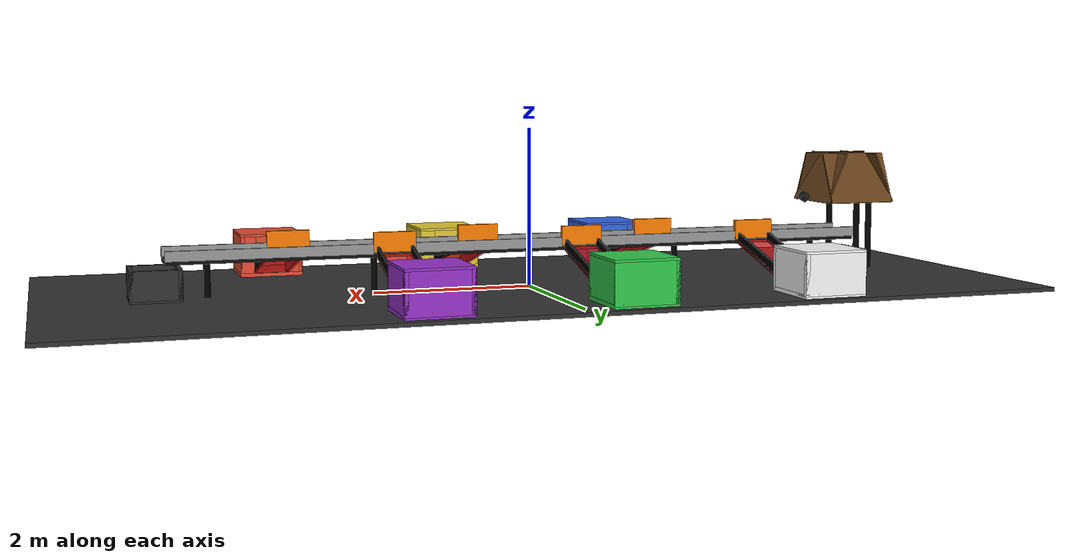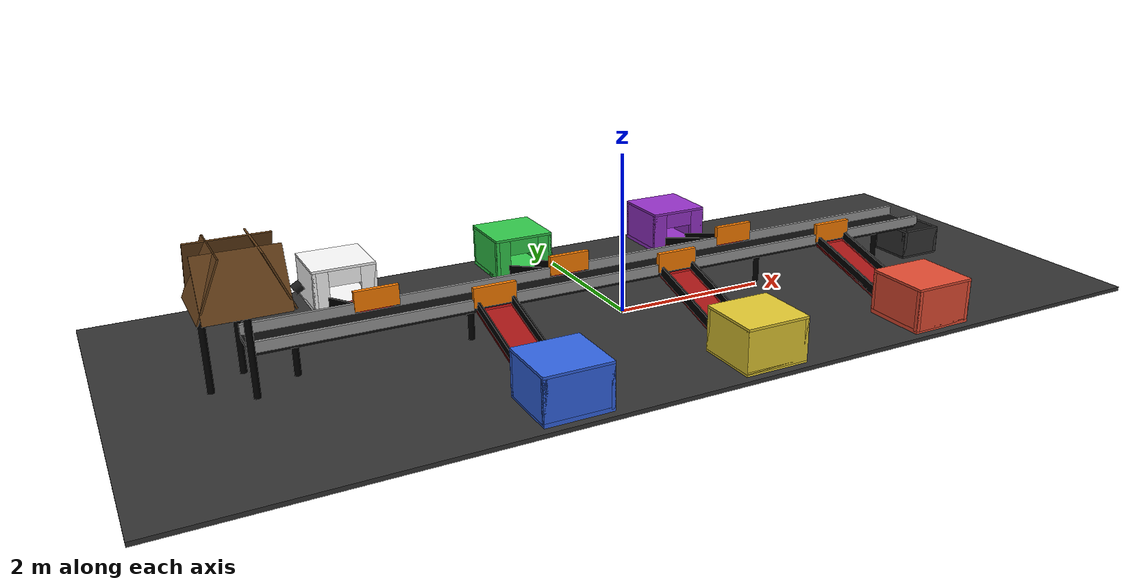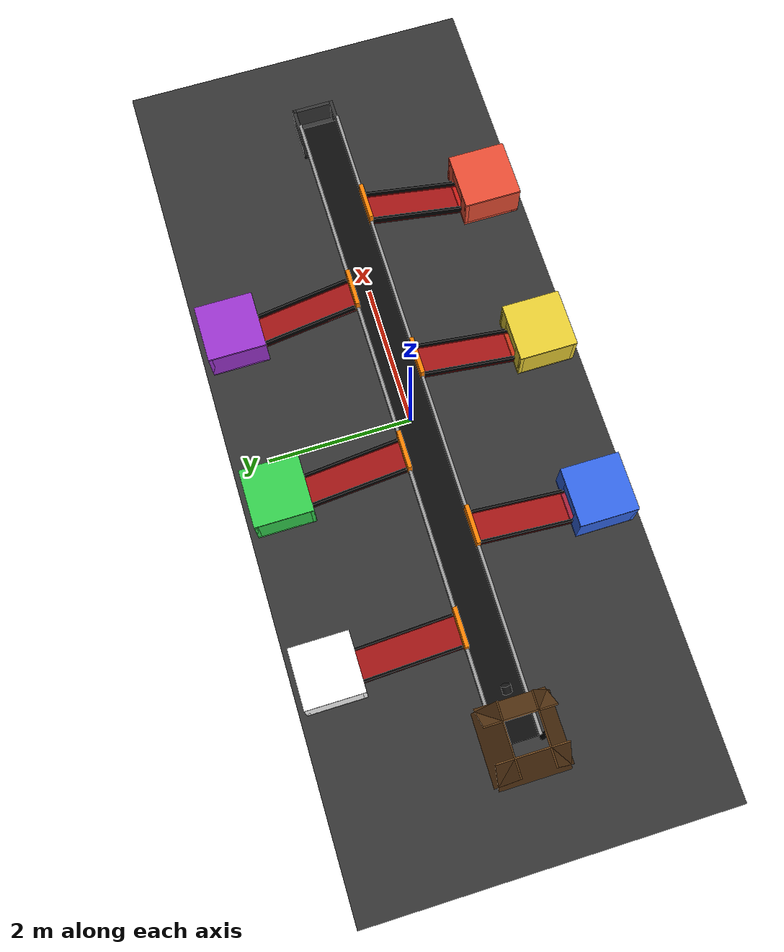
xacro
<?xml version="1.0"?>
<robot name="sorting_station" xmlns:xacro="http://www.ros.org/wiki/xacro">

  <xacro:property name="prefix" value="line_"/>
  <xacro:property name="belt_height" value="0.50"/>
  <xacro:property name="belt_length" value="9.0"/>
  <xacro:property name="belt_width" value="0.5"/>
  <xacro:property name="support_radius" value="0.04"/>    <!-- Görsel kolon yarıçapı -->
  <xacro:property name="belt_support_height" value="0.50"/>   <!-- Bant altı kolon yüksekliği -->
  <xacro:property name="hopper_support_height" value="1.00"/> <!-- Huni kolon yüksekliği (daha uzun) -->
  <xacro:property name="support_color" value="0 0 0 1.0"/>    <!-- Kolon rengi (siyah) -->

  <!-- ============================================
       ÖLÇÜ KURALLARI (KESİN)
       ============================================ -->
  <!-- KAPI BOYUTLARI (tüm kapılar aynı) - DARALTILMIŞ -->
  <xacro:property name="gate_thickness" value="0.055"/>     <!-- Kapı kalınlığı (x ekseni) - minik kısaltıldı -->
  <xacro:property name="gate_arm_length" value="0.52"/>     <!-- Kol uzunluğu (banda doğru) - çok az kısaltıldı -->
  <xacro:property name="gate_height" value="0.24"/>         <!-- Kapı yüksekliği -->
  <xacro:property name="gate_hinge_offset" value="${gate_arm_length/2 - 0.01}"/> <!-- Hinge-to-tip mesafe (1cm pay) -->
  <xacro:property name="gate_joint_back_shift" value="${gate_arm_length/2 - 0.005}"/> <!-- Menteşe: gap arka kenarına ~5mm mesafe -->

  <!-- DUVAR BOŞLUKLARI (tüm istasyonlarda aynı) - KAPI UZUNLUĞU KADAR -->
  <xacro:property name="wall_gap_width" value="${gate_arm_length}"/>     <!-- Kapı süpürme uzunluğu kadar boşluk -->
  <xacro:property name="wall_gap_half" value="${wall_gap_width/2.0}"/>   <!-- Boşluğun yarısı -->

  <!-- MENTEŞİ NOKTALARI (banda yakın, duvar kenarı) -->
  <xacro:property name="gate_pivot_y_left" value="0.27"/>   <!-- LEFT kapı menteşesi -->
  <xacro:property name="gate_pivot_y_right" value="-0.27"/> <!-- RIGHT kapı menteşesi -->

  <!-- BASE PLATFORM -->
  <link name="${prefix}base_link">
    <visual>
      <origin xyz="0 0 0.025"/>
      <geometry><box size="12.0 5.0 0.05"/></geometry>
      <material name="BaseGrey"><color rgba="0.2 0.2 0.2 1"/></material>
    </visual>
    <collision>
      <origin xyz="0 0 0.025"/>
      <geometry><box size="12.0 5.0 0.05"/></geometry>
    </collision>
    <inertial>
      <mass value="100"/>
      <origin xyz="0 0 0.025"/>
      <inertia ixx="30" ixy="0" ixz="0" iyy="40" iyz="0" izz="50"/>
    </inertial>
  </link>

  <!-- MAIN CONVEYOR BELT -->
  <link name="${prefix}conveyor_belt">
    <visual>
      <origin xyz="0 0 0"/>
      <geometry><box size="${belt_length} ${belt_width} 0.05"/></geometry>
      <material name="BeltBlack"><color rgba="0.05 0.05 0.05 1"/></material>
    </visual>
    <collision>
      <origin xyz="0 0 0"/>
      <geometry><box size="${belt_length} ${belt_width} 0.05"/></geometry>
      <surface>
        <friction>
          <ode><mu>1.5</mu><mu2>1.5</mu2></ode>
        </friction>
      </surface>
    </collision>
    <inertial>
      <mass value="25"/>
      <origin xyz="0 0 0"/>
      <inertia ixx="5" ixy="0" ixz="0" iyy="8" iyz="0" izz="6"/>
    </inertial>
  </link>

  <joint name="${prefix}conveyor_belt_joint" type="fixed">
    <parent link="${prefix}base_link"/>
    <child link="${prefix}conveyor_belt"/>
    <origin xyz="0 0 ${belt_height}"/>
  </joint>

  <gazebo reference="${prefix}conveyor_belt">
    <material>Gazebo/Grey</material>
    <mu1>1.5</mu1>
    <mu2>1.5</mu2>
  </gazebo>

  <!-- VISUAL SUPPORT COLUMNS (sadece görsel, hafif) -->
  <xacro:macro name="support_column" params="idx x y height">
    <link name="${prefix}support_${idx}">
      <visual>
        <origin xyz="0 0 ${height/2}"/>
        <geometry><cylinder length="${height}" radius="${support_radius}"/></geometry>
        <material name="SupportMat"><color rgba="${support_color}"/></material>
      </visual>
      <gazebo reference="${prefix}support_${idx}">
        <material>Gazebo/Black</material>
      </gazebo>
      <collision>
        <origin xyz="0 0 ${height/2}"/>
        <geometry><cylinder length="${height}" radius="0.001"/></geometry>
      </collision>
      <inertial>
        <mass value="0.1"/>
        <origin xyz="0 0 ${height/2}"/>
        <inertia ixx="0.001" ixy="0" ixz="0" iyy="0.001" iyz="0" izz="0.001"/>
      </inertial>
    </link>
    <joint name="${prefix}support_${idx}_joint" type="fixed">
      <parent link="${prefix}base_link"/>
      <child link="${prefix}support_${idx}"/>
      <origin xyz="${x} ${y} 0"/>
    </joint>
  </xacro:macro>

  <!-- Bant altı kolonlar -->
  <xacro:support_column idx="belt1" x="-4.0" y="0.0" height="${belt_support_height}"/>
  <xacro:support_column idx="belt2" x="-2.0" y="0.0" height="${belt_support_height}"/>
  <xacro:support_column idx="belt3" x="0.0"  y="0.0" height="${belt_support_height}"/>
  <xacro:support_column idx="belt4" x="2.0"  y="0.0" height="${belt_support_height}"/>
  <xacro:support_column idx="belt5" x="4.0"  y="0.0" height="${belt_support_height}"/>

  <!-- Huni/keçi ayağı kolonları -->
  <xacro:support_column idx="hopper_left"  x="-4.5" y="0.35"  height="${hopper_support_height}"/>
  <xacro:support_column idx="hopper_right" x="-4.5" y="-0.35" height="${hopper_support_height}"/>
  <xacro:support_column idx="hopper_back"  x="-4.9" y="0.0"   height="${hopper_support_height}"/>

  <xacro:macro name="wall_segment" params="side idx x_pos length">
    <link name="${prefix}belt_wall_${side}_seg${idx}">
      <visual>
        <origin xyz="0 0 0.08"/>
        <geometry><box size="${length} 0.04 0.12"/></geometry>
        <material name="WallGrey"><color rgba="0.6 0.6 0.6 1"/></material>
      </visual>
      <collision>
        <origin xyz="0 0 0.08"/>
        <geometry><box size="${length} 0.04 0.12"/></geometry>
      </collision>
      <inertial>
        <mass value="0.5"/>
        <inertia ixx="0.02" ixy="0" ixz="0" iyy="0.03" iyz="0" izz="0.03"/>
      </inertial>
    </link>

    <joint name="${prefix}belt_wall_${side}_seg${idx}_joint" type="fixed">
      <parent link="${prefix}conveyor_belt"/>
      <child link="${prefix}belt_wall_${side}_seg${idx}"/>
      <xacro:if value="${side == 'left'}">
        <origin xyz="${x_pos} ${belt_width/2 + 0.02} 0"/>
      </xacro:if>
      <xacro:if value="${side == 'right'}">
        <origin xyz="${x_pos} ${-belt_width/2 - 0.02} 0"/>
      </xacro:if>
    </joint>
  </xacro:macro>

  <!-- LEFT WALL SEGMENTS (boşluklar x=-3.0, -0.6, 1.8) -->
  <!-- Her boşluk gate_arm_length (0.52m) genişlikte -->
  <xacro:wall_segment side="left" idx="1" x_pos="-3.88" length="1.24"/>    <!-- -4.5 to -3.26 -->
  <!-- GAP: -3.26 to -2.74 (0.52m) for gate1 at x=-3.0 -->
  <xacro:wall_segment side="left" idx="2" x_pos="-1.8" length="1.88"/>     <!-- -2.74 to -0.86 -->
  <!-- GAP: -0.86 to -0.34 (0.52m) for gate3 at x=-0.6 -->
  <xacro:wall_segment side="left" idx="3" x_pos="0.6" length="1.88"/>      <!-- -0.34 to 1.54 -->
  <!-- GAP: 1.54 to 2.06 (0.52m) for gate5 at x=1.8 -->
  <xacro:wall_segment side="left" idx="4" x_pos="3.28" length="2.44"/>     <!-- 2.06 to 4.5 -->

  <!-- RIGHT WALL SEGMENTS (boşluklar x=-1.8, 0.6, 3.0) -->
  <xacro:wall_segment side="right" idx="1" x_pos="-3.28" length="2.44"/>   <!-- -4.5 to -2.06 -->
  <!-- GAP: -2.06 to -1.54 (0.52m) for gate2 at x=-1.8 -->
  <xacro:wall_segment side="right" idx="2" x_pos="-0.6" length="1.88"/>    <!-- -1.54 to 0.34 -->
  <!-- GAP: 0.34 to 0.86 (0.52m) for gate4 at x=0.6 -->
  <xacro:wall_segment side="right" idx="3" x_pos="1.8" length="1.88"/>     <!-- 0.86 to 2.74 -->
  <!-- GAP: 2.74 to 3.26 (0.52m) for gate6 at x=3.0 -->
  <xacro:wall_segment side="right" idx="4" x_pos="3.88" length="1.24"/>    <!-- 3.26 to 4.5 -->

  <!-- HOPPER/FUNNEL -->
  <link name="${prefix}hopper_base">
    <inertial><mass value="0.1"/><inertia ixx="0.01" ixy="0" ixz="0" iyy="0.01" iyz="0" izz="0.01"/></inertial>
  </link>

  <joint name="${prefix}hopper_base_joint" type="fixed">
    <parent link="${prefix}conveyor_belt"/>
    <child link="${prefix}hopper_base"/>
    <origin xyz="-4.5 0 0.6"/>
  </joint>

  <link name="${prefix}hopper_wall_front">
    <visual>
      <geometry><box size="0.9 0.02 0.7"/></geometry>
      <material name="HopperWall"><color rgba="0.4 0.25 0.1 1.0"/></material>
    </visual>
    <gazebo reference="${prefix}hopper_wall_front">
      <material>Gazebo/Brown</material>
    </gazebo>
    <collision><geometry><box size="0.9 0.02 0.7"/></geometry></collision>
    <inertial><mass value="1"/><inertia ixx="0.1" ixy="0" ixz="0" iyy="0.1" iyz="0" izz="0.1"/></inertial>
  </link>
  <joint name="${prefix}hopper_wall_front_joint" type="fixed">
    <parent link="${prefix}hopper_base"/>
    <child link="${prefix}hopper_wall_front"/>
    <origin xyz="0 0.35 0.2" rpy="0.4 0 0"/>
  </joint>

  <link name="${prefix}hopper_wall_back">
    <visual>
      <geometry><box size="0.9 0.02 0.7"/></geometry>
      <material name="HopperWall"><color rgba="0.4 0.25 0.1 1.0"/></material>
    </visual>
    <gazebo reference="${prefix}hopper_wall_back">
      <material>Gazebo/Brown</material>
    </gazebo>
    <collision><geometry><box size="0.9 0.02 0.7"/></geometry></collision>
    <inertial><mass value="1"/><inertia ixx="0.1" ixy="0" ixz="0" iyy="0.1" iyz="0" izz="0.1"/></inertial>
  </link>
  <joint name="${prefix}hopper_wall_back_joint" type="fixed">
    <parent link="${prefix}hopper_base"/>
    <child link="${prefix}hopper_wall_back"/>
    <origin xyz="0 -0.35 0.2" rpy="-0.4 0 0"/>
  </joint>

  <link name="${prefix}hopper_wall_left">
    <visual>
      <geometry><box size="0.02 0.9 0.7"/></geometry>
      <material name="HopperWall"><color rgba="0.4 0.25 0.1 1.0"/></material>
    </visual>
    <gazebo reference="${prefix}hopper_wall_left">
      <material>Gazebo/Brown</material>
    </gazebo>
    <collision><geometry><box size="0.02 0.9 0.7"/></geometry></collision>
    <inertial><mass value="1"/><inertia ixx="0.1" ixy="0" ixz="0" iyy="0.1" iyz="0" izz="0.1"/></inertial>
  </link>
  <joint name="${prefix}hopper_wall_left_joint" type="fixed">
    <parent link="${prefix}hopper_base"/>
    <child link="${prefix}hopper_wall_left"/>
    <origin xyz="0.35 0 0.2" rpy="0 -0.4 0"/>
  </joint>

  <link name="${prefix}hopper_wall_right">
    <visual>
      <geometry><box size="0.02 0.9 0.7"/></geometry>
      <material name="HopperWall"><color rgba="0.4 0.25 0.1 1.0"/></material>
    </visual>
    <gazebo reference="${prefix}hopper_wall_right">
      <material>Gazebo/Brown</material>
    </gazebo>
    <collision><geometry><box size="0.02 0.9 0.7"/></geometry></collision>
    <inertial><mass value="1"/><inertia ixx="0.1" ixy="0" ixz="0" iyy="0.1" iyz="0" izz="0.1"/></inertial>
  </link>
  <joint name="${prefix}hopper_wall_right_joint" type="fixed">
    <parent link="${prefix}hopper_base"/>
    <child link="${prefix}hopper_wall_right"/>
    <origin xyz="-0.35 0 0.2" rpy="0 0.4 0"/>
  </joint>

  <xacro:macro name="sweeper_gate" params="idx x side color_r color_g color_b">

    <!-- Kapı kolu (gate arm) -->
    <link name="${prefix}gate${idx}_link">
      <xacro:if value="${side > 0}">
        <!-- LEFT GATE: Menteşe y=+0.27, kol banda doğru (y=-direction) -->
        <visual>
          <!-- Kapı kolu X yönünde, menteşe boşluğun ileri ucunda (huniden uzak), serbest uç banda süpürür -->
          <origin xyz="${-(gate_arm_length/2 - 0.005)} 0 0" rpy="0 0 1.5708"/>
          <geometry><box size="${gate_thickness} ${gate_arm_length} ${gate_height}"/></geometry>
          <material name="Gate${idx}Color">
            <color rgba="${color_r} ${color_g} ${color_b} 1"/>
          </material>
        </visual>
        <collision>
          <origin xyz="${-(gate_arm_length/2 - 0.005)} 0 0" rpy="0 0 1.5708"/>
          <geometry><box size="${gate_thickness} ${gate_arm_length} ${gate_height}"/></geometry>
          <surface>
            <friction><ode><mu>3.0</mu><mu2>3.0</mu2></ode></friction>
          </surface>
        </collision>
        <inertial>
          <mass value="1.8"/>
          <origin xyz="${-(gate_arm_length/2 - 0.005)} 0 0" rpy="0 0 1.5708"/>
          <inertia ixx="0.05" ixy="0" ixz="0" iyy="0.006" iyz="0" izz="0.05"/>
        </inertial>
      </xacro:if>

      <xacro:if value="${side &lt; 0}">
        <!-- RIGHT GATE: Menteşe y=-0.27, kol banda doğru (y=+direction) -->
        <visual>
          <!-- Kapı kolu X yönünde, menteşe boşluğun ileri ucunda (huniden uzak), serbest uç banda süpürür -->
          <origin xyz="${-(gate_arm_length/2 - 0.005)} 0 0" rpy="0 0 1.5708"/>
          <geometry><box size="${gate_thickness} ${gate_arm_length} ${gate_height}"/></geometry>
          <material name="Gate${idx}Color">
            <color rgba="${color_r} ${color_g} ${color_b} 1"/>
          </material>
        </visual>
        <collision>
          <origin xyz="${-(gate_arm_length/2 - 0.005)} 0 0" rpy="0 0 1.5708"/>
          <geometry><box size="${gate_thickness} ${gate_arm_length} ${gate_height}"/></geometry>
          <surface>
            <friction><ode><mu>3.0</mu><mu2>3.0</mu2></ode></friction>
          </surface>
        </collision>
        <inertial>
          <mass value="1.8"/>
          <origin xyz="${-(gate_arm_length/2 - 0.005)} 0 0" rpy="0 0 1.5708"/>
          <inertia ixx="0.05" ixy="0" ixz="0" iyy="0.006" iyz="0" izz="0.05"/>
        </inertial>
      </xacro:if>
    </link>

    <!-- REVOLUTE JOINT: Menteşe banda yakın duvarda -->
    <joint name="gate${idx}_joint" type="revolute">
      <parent link="${prefix}conveyor_belt"/>
      <child link="${prefix}gate${idx}_link"/>
      <axis xyz="0 0 1"/>  <!-- Dikey eksen etrafında dönme -->
      <dynamics damping="0.6" friction="0.12"/>

      <xacro:if value="${side > 0}">
        <!-- LEFT GATE: Menteşe y=+0.27m (duvar kenarı) -->
        <origin xyz="${x + gate_joint_back_shift} ${gate_pivot_y_left} 0.16" rpy="0 0 0"/>
        <!-- Kapalı: 0.0, Açık: +1.3 rad (~75°, banda doğru süpürme sağa) -->
        <limit lower="-0.02" upper="1.35" effort="180" velocity="5.5"/>
      </xacro:if>

      <xacro:if value="${side &lt; 0}">
        <!-- RIGHT GATE: Menteşe y=-0.27m (duvar kenarı) -->
        <origin xyz="${x + gate_joint_back_shift} ${gate_pivot_y_right} 0.16" rpy="0 0 0"/>
        <!-- Kapalı: 0.0, Açık: -1.3 rad (~75°, banda doğru süpürme sola) -->
        <limit lower="-1.35" upper="0.02" effort="180" velocity="5.5"/>
      </xacro:if>
    </joint>

    <gazebo reference="${prefix}gate${idx}_link">
      <material>Gazebo/Orange</material>
      <mu1>3.0</mu1>
      <mu2>3.0</mu2>
    </gazebo>
  </xacro:macro>

  <!-- 6 Kapı tanımları (TÜM KAPILAR AYNI BOYUTTA) -->
  <xacro:sweeper_gate idx="1" x="-3.0" side="1"  color_r="1.0" color_g="0.5" color_b="0.0"/>
  <xacro:sweeper_gate idx="3" x="-0.6" side="1"  color_r="1.0" color_g="0.5" color_b="0.0"/>
  <xacro:sweeper_gate idx="5" x="1.8"  side="1"  color_r="1.0" color_g="0.5" color_b="0.0"/>

  <!-- Sağ kapılar için sağa doğru pozitif açı yerine negatif açıyla içeri süpürme (limitler üstte aynı) -->
  <xacro:sweeper_gate idx="2" x="-1.8" side="-1" color_r="1.0" color_g="0.5" color_b="0.0"/>
  <xacro:sweeper_gate idx="4" x="0.6"  side="-1" color_r="1.0" color_g="0.5" color_b="0.0"/>
  <xacro:sweeper_gate idx="6" x="3.0"  side="-1" color_r="1.0" color_g="0.5" color_b="0.0"/>

  <!-- SIDE CHANNELS -->
  <xacro:macro name="slide_channel" params="idx x y yaw">
    <link name="${prefix}channel${idx}_link">
      <visual>
        <geometry><box size="1.5 0.45 0.04"/></geometry>
        <material name="ChannelRed">
          <color rgba="0.8 0.1 0.1 0.8"/>
        </material>
      </visual>
      <collision>
        <geometry><box size="1.5 0.45 0.04"/></geometry>
        <surface>
          <friction>
            <ode><mu>0.15</mu><mu2>0.15</mu2></ode>
          </friction>
        </surface>
      </collision>
      <inertial>
        <mass value="4"/>
        <inertia ixx="0.4" ixy="0" ixz="0" iyy="0.5" iyz="0" izz="0.5"/>
      </inertial>
    </link>

    <!-- Yan set: kutuların kanaldan düşmesini engelleyen alçak duvarlar -->
    <link name="${prefix}channel${idx}_side_left">
      <visual>
        <geometry><box size="1.5 0.03 0.12"/></geometry>
        <material name="ChannelSide"><color rgba="0 0 0 1"/></material>
      </visual>
      <collision>
        <geometry><box size="1.5 0.03 0.12"/></geometry>
      </collision>
      <inertial><mass value="0.5"/><inertia ixx="0.02" ixy="0" ixz="0" iyy="0.03" iyz="0" izz="0.03"/></inertial>
    </link>

    <link name="${prefix}channel${idx}_side_right">
      <visual>
        <geometry><box size="1.5 0.03 0.12"/></geometry>
        <material name="ChannelSide"><color rgba="0 0 0 1"/></material>
      </visual>
      <collision>
        <geometry><box size="1.5 0.03 0.12"/></geometry>
      </collision>
      <inertial><mass value="0.5"/><inertia ixx="0.02" ixy="0" ixz="0" iyy="0.03" iyz="0" izz="0.03"/></inertial>
    </link>

    <joint name="${prefix}channel${idx}_joint" type="fixed">
      <parent link="${prefix}conveyor_belt"/>
      <child link="${prefix}channel${idx}_link"/>
      <origin xyz="${x} ${y} -0.21" rpy="0 0.28 ${yaw}"/>
    </joint>

    <!-- Yan setleri bağla: ana kanalın kenarına, hafif yükseltilmiş -->
    <joint name="${prefix}channel${idx}_side_left_joint" type="fixed">
      <parent link="${prefix}channel${idx}_link"/>
      <child link="${prefix}channel${idx}_side_left"/>
      <origin xyz="0 0.21 0.06" rpy="0 0 0"/>
    </joint>

    <joint name="${prefix}channel${idx}_side_right_joint" type="fixed">
      <parent link="${prefix}channel${idx}_link"/>
      <child link="${prefix}channel${idx}_side_right"/>
      <origin xyz="0 -0.21 0.06" rpy="0 0 0"/>
    </joint>

    <gazebo reference="${prefix}channel${idx}_link">
      <material>Gazebo/Red</material>
      <mu1>0.15</mu1>
      <mu2>0.15</mu2>
    </gazebo>
  </xacro:macro>

  <xacro:slide_channel idx="1" x="-3.0" y="1.0"  yaw="1.5708"/>
  <xacro:slide_channel idx="2" x="-1.8" y="-1.0" yaw="-1.5708"/>
  <xacro:slide_channel idx="3" x="-0.6" y="1.0"  yaw="1.5708"/>
  <xacro:slide_channel idx="4" x="0.6"  y="-1.0" yaw="-1.5708"/>
  <xacro:slide_channel idx="5" x="1.8"  y="1.0"  yaw="1.5708"/>
  <xacro:slide_channel idx="6" x="3.0"  y="-1.0" yaw="-1.5708"/>

  <!-- CONTAINERS -->
  <xacro:macro name="container" params="idx x y r g b name entry_side gazebo_mat">
    <link name="${prefix}container${idx}_bottom">
      <visual>
        <geometry><box size="0.8 0.8 0.05"/></geometry>
        <material name="Container${idx}Mat"><color rgba="${r} ${g} ${b} 1.0"/></material>
      </visual>
      <collision><geometry><box size="0.8 0.8 0.05"/></geometry></collision>
      <inertial><mass value="5"/><inertia ixx="0.1" ixy="0" ixz="0" iyy="0.1" iyz="0" izz="0.15"/></inertial>
    </link>
    <gazebo reference="${prefix}container${idx}_bottom">
      <material>${gazebo_mat}</material>
    </gazebo>
    <joint name="${prefix}container${idx}_bottom_joint" type="fixed">
      <parent link="${prefix}base_link"/>
      <child link="${prefix}container${idx}_bottom"/>
      <origin xyz="${x} ${y} 0.075"/>
    </joint>

    <xacro:macro name="container_wall" params="wall_name pose_x pose_y size_x size_y">
      <link name="${prefix}container${idx}_${wall_name}">
        <visual>
          <geometry><box size="${size_x} ${size_y} 0.5"/></geometry>
          <material name="Container${idx}Mat"><color rgba="${r} ${g} ${b} 1.0"/></material>
        </visual>
        <collision><geometry><box size="${size_x} ${size_y} 0.5"/></geometry></collision>
        <inertial><mass value="2"/><inertia ixx="0.06" ixy="0" ixz="0" iyy="0.06" iyz="0" izz="0.08"/></inertial>
      </link>
      <gazebo reference="${prefix}container${idx}_${wall_name}">
        <material>${gazebo_mat}</material>
      </gazebo>
      <joint name="${prefix}container${idx}_${wall_name}_joint" type="fixed">
        <parent link="${prefix}container${idx}_bottom"/>
        <child link="${prefix}container${idx}_${wall_name}"/>
        <origin xyz="${pose_x} ${pose_y} 0.25"/>
      </joint>
    </xacro:macro>

    <!-- Duvara giriş deliği için özel duvar -->
    <xacro:macro name="container_wall_with_hole" params="wall_name pose_x pose_y size_x size_y hole_w hole_h">
      <!-- Yan sütunlar -->
      <link name="${prefix}container${idx}_${wall_name}_pillar_left">
        <visual>
          <geometry><box size="${(size_x-hole_w)/2} ${size_y} 0.5"/></geometry>
          <material name="Container${idx}Mat"><color rgba="${r} ${g} ${b} 1.0"/></material>
        </visual>
        <collision><geometry><box size="${(size_x-hole_w)/2} ${size_y} 0.5"/></geometry></collision>
        <inertial><mass value="0.8"/><inertia ixx="0.04" ixy="0" ixz="0" iyy="0.04" iyz="0" izz="0.05"/></inertial>
      </link>
      <gazebo reference="${prefix}container${idx}_${wall_name}_pillar_left">
        <material>${gazebo_mat}</material>
      </gazebo>
      <joint name="${prefix}container${idx}_${wall_name}_pillar_left_joint" type="fixed">
        <parent link="${prefix}container${idx}_bottom"/>
        <child link="${prefix}container${idx}_${wall_name}_pillar_left"/>
        <origin xyz="${-hole_w/2 - (size_x-hole_w)/4} ${pose_y} 0.25"/>
      </joint>

      <link name="${prefix}container${idx}_${wall_name}_pillar_right">
        <visual>
          <geometry><box size="${(size_x-hole_w)/2} ${size_y} 0.5"/></geometry>
          <material name="Container${idx}Mat"><color rgba="${r} ${g} ${b} 1.0"/></material>
        </visual>
        <collision><geometry><box size="${(size_x-hole_w)/2} ${size_y} 0.5"/></geometry></collision>
        <inertial><mass value="0.8"/><inertia ixx="0.04" ixy="0" ixz="0" iyy="0.04" iyz="0" izz="0.05"/></inertial>
      </link>
      <gazebo reference="${prefix}container${idx}_${wall_name}_pillar_right">
        <material>${gazebo_mat}</material>
      </gazebo>
      <joint name="${prefix}container${idx}_${wall_name}_pillar_right_joint" type="fixed">
        <parent link="${prefix}container${idx}_bottom"/>
        <child link="${prefix}container${idx}_${wall_name}_pillar_right"/>
        <origin xyz="${hole_w/2 + (size_x-hole_w)/4} ${pose_y} 0.25"/>
      </joint>

      <!-- Üst lento: deliğin üstünü kapatır -->
      <link name="${prefix}container${idx}_${wall_name}_lintel">
        <visual>
          <geometry><box size="${hole_w} ${size_y} ${0.5 - hole_h}"/></geometry>
          <material name="Container${idx}Mat"><color rgba="${r} ${g} ${b} 1.0"/></material>
        </visual>
        <collision><geometry><box size="${hole_w} ${size_y} ${0.5 - hole_h}"/></geometry></collision>
        <inertial><mass value="0.8"/><inertia ixx="0.04" ixy="0" ixz="0" iyy="0.04" iyz="0" izz="0.05"/></inertial>
      </link>
      <gazebo reference="${prefix}container${idx}_${wall_name}_lintel">
        <material>${gazebo_mat}</material>
      </gazebo>
      <joint name="${prefix}container${idx}_${wall_name}_lintel_joint" type="fixed">
        <parent link="${prefix}container${idx}_bottom"/>
        <child link="${prefix}container${idx}_${wall_name}_lintel"/>
        <origin xyz="0 ${pose_y} ${(0.5 + hole_h)/2}"/>
      </joint>
    </xacro:macro>

    <!-- Standart yan duvarlar + giriş duvarı -->
    <xacro:if value="${entry_side == 'back'}">
      <xacro:container_wall wall_name="front" pose_x="0" pose_y="0.375" size_x="0.8" size_y="0.05"/>
      <xacro:container_wall_with_hole wall_name="back" pose_x="0" pose_y="-0.375" size_x="0.8" size_y="0.05" hole_w="0.4" hole_h="0.3"/>
    </xacro:if>
    <xacro:if value="${entry_side == 'front'}">
      <xacro:container_wall_with_hole wall_name="front" pose_x="0" pose_y="0.375" size_x="0.8" size_y="0.05" hole_w="0.4" hole_h="0.3"/>
      <xacro:container_wall wall_name="back" pose_x="0" pose_y="-0.375" size_x="0.8" size_y="0.05"/>
    </xacro:if>
    <xacro:container_wall wall_name="left" pose_x="0.375" pose_y="0" size_x="0.05" size_y="0.8"/>
    <xacro:container_wall wall_name="right" pose_x="-0.375" pose_y="0" size_x="0.05" size_y="0.8"/>

    <!-- Kapak (üstü kapalı) -->
    <link name="${prefix}container${idx}_top">
      <visual>
        <geometry><box size="0.8 0.8 0.03"/></geometry>
        <material name="Container${idx}Mat"><color rgba="${r} ${g} ${b} 1.0"/></material>
      </visual>
      <collision><geometry><box size="0.8 0.8 0.03"/></geometry></collision>
      <inertial><mass value="0.8"/><inertia ixx="0.04" ixy="0" ixz="0" iyy="0.04" iyz="0" izz="0.04"/></inertial>
    </link>
    <joint name="${prefix}container${idx}_top_joint" type="fixed">
      <parent link="${prefix}container${idx}_bottom"/>
      <child link="${prefix}container${idx}_top"/>
      <origin xyz="0 0 0.515"/>
    </joint>
    <gazebo reference="${prefix}container${idx}_top">
      <material>${gazebo_mat}</material>
    </gazebo>
  </xacro:macro>

  <!-- entry_side: rampanın geldiği yüz; y>0 konteynerlerde back, y<0 konteynerlerde front -->
  <xacro:container idx="1" x="-3.0" y="2.0" r="1.0" g="1.0" b="1.0" name="Metal"   entry_side="back"  gazebo_mat="Gazebo/White"/>
  <xacro:container idx="2" x="-1.8" y="-2.0" r="0.2" g="0.4" b="0.9" name="Plastic" entry_side="front" gazebo_mat="Gazebo/Blue"/>
  <xacro:container idx="3" x="-0.6" y="2.0" r="0.2" g="0.8" b="0.3" name="Glass"   entry_side="back"  gazebo_mat="Gazebo/Green"/>
  <xacro:container idx="4" x="0.6" y="-2.0" r="0.9" g="0.8" b="0.2" name="Paper"   entry_side="front" gazebo_mat="Gazebo/Yellow"/>
  <xacro:container idx="5" x="1.8" y="2.0" r="0.6" g="0.2" b="0.8" name="Battery"  entry_side="back"  gazebo_mat="Gazebo/Purple"/>
  <xacro:container idx="6" x="3.0" y="-2.0" r="0.9" g="0.3" b="0.2" name="Organic" entry_side="front" gazebo_mat="Gazebo/Orange"/>

  <!-- GRINDER BIN (Unclassified waste) -->
  <link name="${prefix}grinder_bin_base">
    <visual>
      <geometry><box size="0.6 0.6 0.05"/></geometry>
      <material name="GrinderGrey"><color rgba="0.2 0.2 0.2 1"/></material>
    </visual>
    <collision><geometry><box size="0.6 0.6 0.05"/></geometry></collision>
    <inertial><mass value="4"/><inertia ixx="0.1" ixy="0" ixz="0" iyy="0.1" iyz="0" izz="0.1"/></inertial>
  </link>
  <joint name="${prefix}grinder_bin_base_joint" type="fixed">
    <parent link="${prefix}base_link"/>
    <child link="${prefix}grinder_bin_base"/>
    <origin xyz="4.6 0 0.05"/>
  </joint>

  <xacro:macro name="grinder_wall" params="name pose_x pose_y size_x size_y">
    <link name="${prefix}grinder_${name}">
      <visual>
        <geometry><box size="${size_x} ${size_y} 0.35"/></geometry>
        <material name="GrinderGrey"><color rgba="0.2 0.2 0.2 1"/></material>
      </visual>
      <collision><geometry><box size="${size_x} ${size_y} 0.35"/></geometry></collision>
      <inertial><mass value="2"/><inertia ixx="0.08" ixy="0" ixz="0" iyy="0.08" iyz="0" izz="0.1"/></inertial>
    </link>
    <joint name="${prefix}grinder_${name}_joint" type="fixed">
      <parent link="${prefix}grinder_bin_base"/>
      <child link="${prefix}grinder_${name}"/>
      <origin xyz="${pose_x} ${pose_y} 0.2"/>
    </joint>
  </xacro:macro>

  <!-- Öğütücü: tüm duvarlar (üstü açık), kısa yükseklik -->
  <xacro:grinder_wall name="front" pose_x="0" pose_y="0.275" size_x="0.6" size_y="0.05"/>
  <xacro:grinder_wall name="back"  pose_x="0" pose_y="-0.275" size_x="0.6" size_y="0.05"/>
  <xacro:grinder_wall name="left"  pose_x="0.275" pose_y="0" size_x="0.05" size_y="0.6"/>
  <xacro:grinder_wall name="right" pose_x="-0.275" pose_y="0" size_x="0.05" size_y="0.6"/>

  <!-- ============================================
       KAMERA (BANDA YAKIN, SADECE BANT GÖRSİN)
       ============================================ -->
  <link name="${prefix}camera_link">
    <visual>
      <geometry><cylinder length="0.10" radius="0.06"/></geometry>
      <material name="CameraBlack"><color rgba="0.1 0.1 0.1 1"/></material>
    </visual>
    <collision><geometry><cylinder length="0.10" radius="0.06"/></geometry></collision>
    <inertial><mass value="0.6"/><inertia ixx="0.001" ixy="0" ixz="0" iyy="0.001" iyz="0" izz="0.001"/></inertial>
  </link>

  <joint name="${prefix}camera_joint" type="fixed">
    <parent link="${prefix}conveyor_belt"/>
    <child link="${prefix}camera_link"/>
    <!-- Banda daha yakın: x=-3.9, z=0.54, pitch daha dik (1.05 rad ~60°) -->
    <origin xyz="-3.9 0 0.54" rpy="0 1.05 0"/>
  </joint>

  <gazebo reference="${prefix}camera_link">
    <sensor type="camera" name="sorting_camera">
      <always_on>true</always_on>
      <update_rate>20</update_rate>
      <camera>
        <!-- Daha dar görüş açısı - sadece bant -->
        <horizontal_fov>0.8</horizontal_fov>
        <image>
          <width>800</width>
          <height>600</height>
          <format>R8G8B8</format>
        </image>
        <!-- Daha yakın clipping - duvarları görmemek için -->
        <clip><near>0.12</near><far>2.5</far></clip>
      </camera>
      <plugin name="camera_controller" filename="libgazebo_ros_camera.so">
        <robotNamespace>/</robotNamespace>
        <cameraName>camera</cameraName>
        <imageTopicName>image_raw</imageTopicName>
        <frameName>${prefix}camera_link</frameName>
      </plugin>
    </sensor>
  </gazebo>

  <!-- TRANSMISSIONS -->
  <xacro:macro name="gate_transmission" params="idx">
    <transmission name="gate${idx}_transmission">
      <type>transmission_interface/SimpleTransmission</type>
      <joint name="gate${idx}_joint">
        <hardwareInterface>hardware_interface/EffortJointInterface</hardwareInterface>
      </joint>
      <actuator name="gate${idx}_motor">
        <hardwareInterface>hardware_interface/EffortJointInterface</hardwareInterface>
        <mechanicalReduction>1</mechanicalReduction>
      </actuator>
    </transmission>
  </xacro:macro>

  <xacro:gate_transmission idx="1"/>
  <xacro:gate_transmission idx="2"/>
  <xacro:gate_transmission idx="3"/>
  <xacro:gate_transmission idx="4"/>
  <xacro:gate_transmission idx="5"/>
  <xacro:gate_transmission idx="6"/>

  <!-- ROS CONTROL -->
  <gazebo>
    <plugin name="gazebo_ros_control" filename="libgazebo_ros_control.so">
      <robotNamespace>/</robotNamespace>
      <robotSimType>gazebo_ros_control/DefaultRobotHWSim</robotSimType>
    </plugin>
  </gazebo>

</robot>
